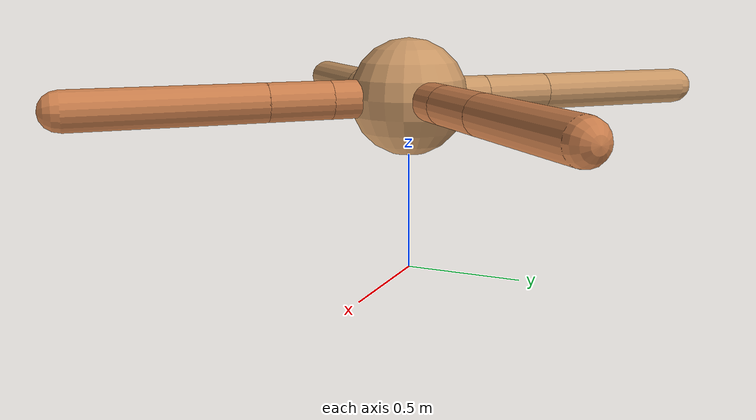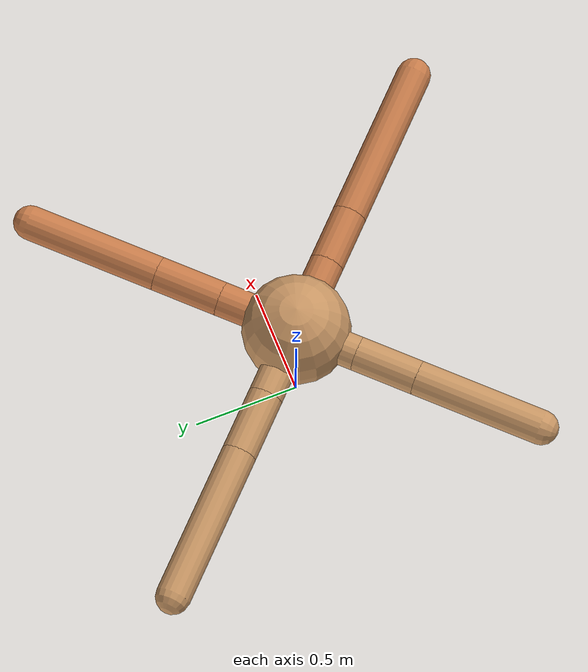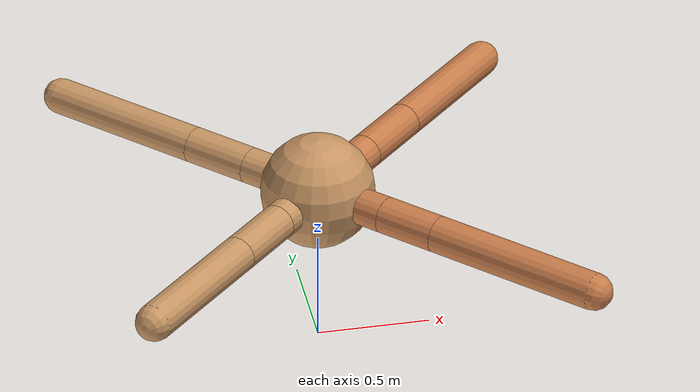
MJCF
<mujoco model="ant">
  <compiler angle="degree" coordinate="local" inertiafromgeom="true" />
  <option integrator="RK4" timestep="0.01" />
  <custom>
    <numeric data="0.0 0.0 0.55 1.0 0.0 0.0 0.0 0.0 1.0 0.0 -1.0 0.0 -1.0 0.0 1.0" name="init_qpos" />
  </custom>
  <default>
    <joint armature="1" damping="1" limited="true" />
    <geom conaffinity="0" condim="3" density="5.0" friction="1.5 0.1 0.1" margin="0.01" rgba="0.8 0.6 0.4 1" />
  </default>
  <worldbody>
    <body name="torso" pos="0 0 0.75">
      <geom name="torso_geom" pos="0 0 0" size="0.25" type="sphere" />

      <body name="front_left_leg" pos="0 0 0">
        <geom fromto="0.0 0.0 0.0 0.2624150025876907 0.2624150025876907 0.0" name="aux_1_geom" size="0.08" type="capsule" rgba=".8 .5 .3 1" />
        <body name="aux_1" pos="0.2624150025876907 0.2624150025876907 0.0">
          <joint axis="0 0 1" name="hip_1" pos="0.0 0.0 0.0" range="-40 40" type="hinge" />
          <geom fromto="0.0 0.0 0.0 0.22104057784507694 0.22104057784507694 0.0" name="left_leg_geom" size="0.08" type="capsule" rgba=".8 .5 .3 1" />
          <body pos="0.22104057784507694 0.22104057784507694 0.0" name="front_left_foot">
            <joint axis="-1 1 0" name="ankle_1" pos="0.0 0.0 0.0" range="30 100" type="hinge" />
            <geom fromto="0.0 0.0 0.0 0.45046708656335516 0.45046708656335516 0.0" name="left_ankle_geom" size="0.08" type="capsule" rgba=".8 .5 .3 1" />
          </body>
        </body>
      </body>
      <body name="front_right_leg" pos="0 0 0">
        <geom fromto="0.0 0.0 0.0 -0.24984501432472764 0.24984501432472764 0.0" name="aux_2_geom" size="0.08" type="capsule" />
        <body name="aux_2" pos="-0.24984501432472764 0.24984501432472764 0.0">
          <joint axis="0 0 1" name="hip_2" pos="0.0 0.0 0.0" range="-40 40" type="hinge" />
          <geom fromto="0.0 0.0 0.0 -0.21018399713427183 0.21018399713427183 0.0" name="right_leg_geom" size="0.08" type="capsule" />
          <body pos="-0.21018399713427183 0.21018399713427183 0.0" name="front_right_foot">
            <joint axis="1 1 0" name="ankle_2" pos="0.0 0.0 0.0" range="-100 -30" type="hinge" />
            <geom fromto="0.0 0.0 0.0 -0.5154347385962526 0.5154347385962526 0.0" name="right_ankle_geom" size="0.08" type="capsule" />
          </body>
        </body>
      </body>
      <body name="left_back_leg" pos="0 0 0">
        <geom fromto="0.0 0.0 0.0 -0.21140566031258368 -0.21140566031258368 0.0" name="aux_3_geom" size="0.08" type="capsule" />
        <body name="aux_3" pos="-0.21140566031258368 -0.21140566031258368 0.0">
          <joint axis="0 0 1" name="hip_3" pos="0.0 0.0 0.0" range="-40 40" type="hinge" />
          <geom fromto="0.0 0.0 0.0 -0.20692214969996062 -0.20692214969996062 0.0" name="back_leg_geom" size="0.08" type="capsule" />
          <body pos="-0.20692214969996062 -0.20692214969996062 0.0" name="left_back_foot">
            <joint axis="-1 1 0" name="ankle_3" pos="0.0 0.0 0.0" range="-100 -30" type="hinge" />
            <geom fromto="0.0 0.0 0.0 -0.4254784530035126 -0.4254784530035126 0.0" name="third_ankle_geom" size="0.08" type="capsule" />
          </body>
        </body>
      </body>
      <body name="right_back_leg" pos="0 0 0">
        <geom fromto="0.0 0.0 0.0 0.24524354104981694 -0.24524354104981694 0.0" name="aux_4_geom" size="0.08" type="capsule" rgba=".8 .5 .3 1" />
        <body name="aux_4" pos="0.24524354104981694 -0.24524354104981694 0.0">
          <joint axis="0 0 1" name="hip_4" pos="0.0 0.0 0.0" range="-40 40" type="hinge" />
          <geom fromto="0.0 0.0 0.0 0.18596740014603885 -0.18596740014603885 0.0" name="rightback_leg_geom" size="0.08" type="capsule" rgba=".8 .5 .3 1" />
          <body pos="0.18596740014603885 -0.18596740014603885 0.0" name="right_back_foot">
            <joint axis="1 1 0" name="ankle_4" pos="0.0 0.0 0.0" range="30 100" type="hinge" />
            <geom fromto="0.0 0.0 0.0 0.5408901696606816 -0.5408901696606816 0.0" name="fourth_ankle_geom" size="0.08" type="capsule" rgba=".8 .5 .3 1" />
          </body>
        </body>
      </body>
    </body>
  </worldbody>
  <actuator>
    <motor ctrllimited="true" ctrlrange="-1.0 1.0" joint="hip_4" gear="150" />
    <motor ctrllimited="true" ctrlrange="-1.0 1.0" joint="ankle_4" gear="150" />
    <motor ctrllimited="true" ctrlrange="-1.0 1.0" joint="hip_1" gear="150" />
    <motor ctrllimited="true" ctrlrange="-1.0 1.0" joint="ankle_1" gear="150" />
    <motor ctrllimited="true" ctrlrange="-1.0 1.0" joint="hip_2" gear="150" />
    <motor ctrllimited="true" ctrlrange="-1.0 1.0" joint="ankle_2" gear="150" />
    <motor ctrllimited="true" ctrlrange="-1.0 1.0" joint="hip_3" gear="150" />
    <motor ctrllimited="true" ctrlrange="-1.0 1.0" joint="ankle_3" gear="150" />
  </actuator>
</mujoco>
